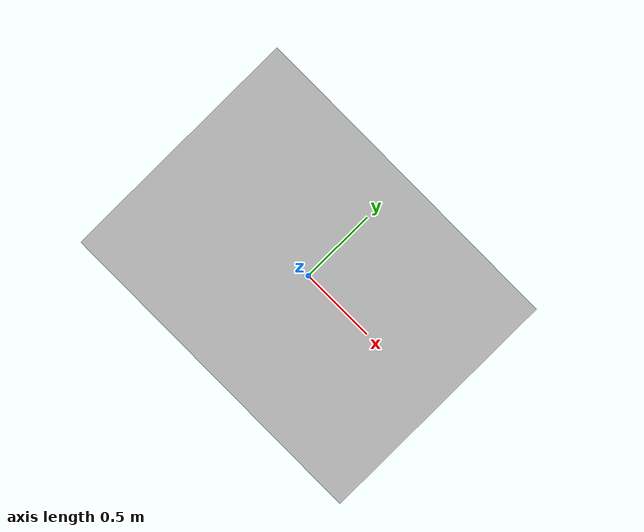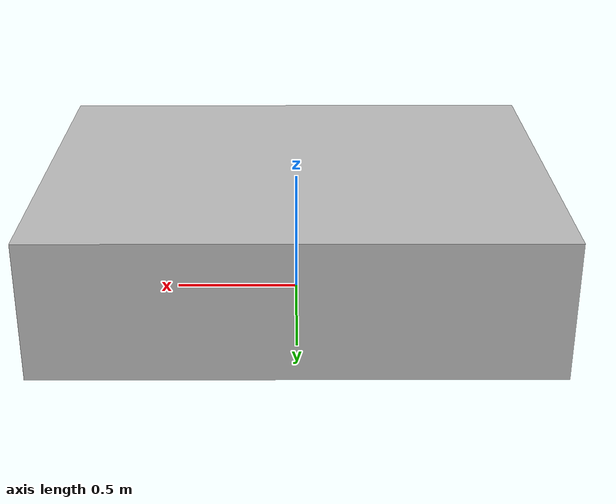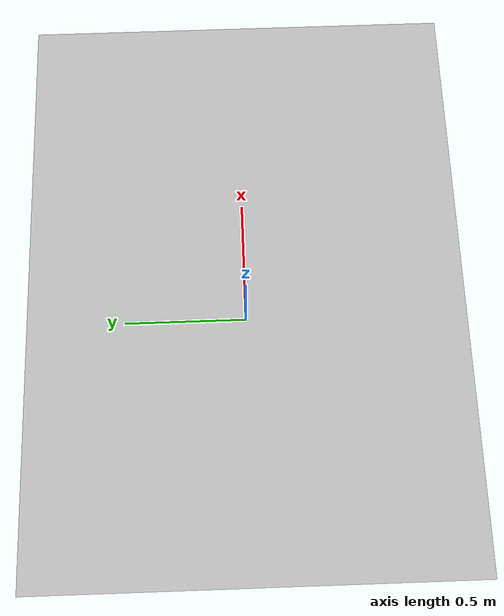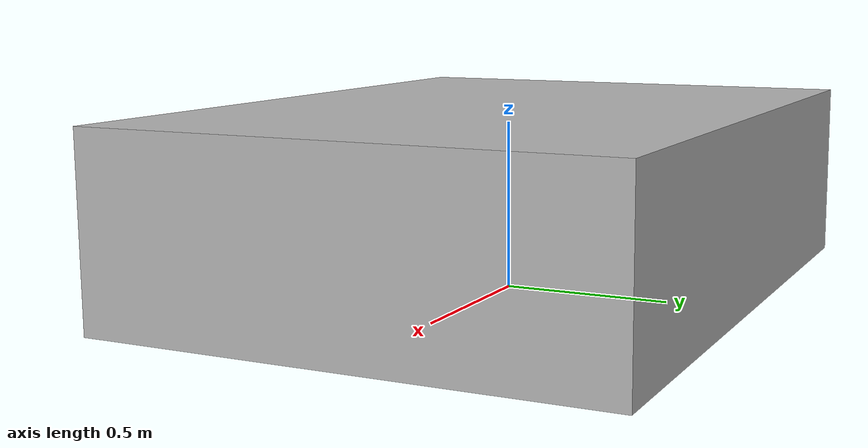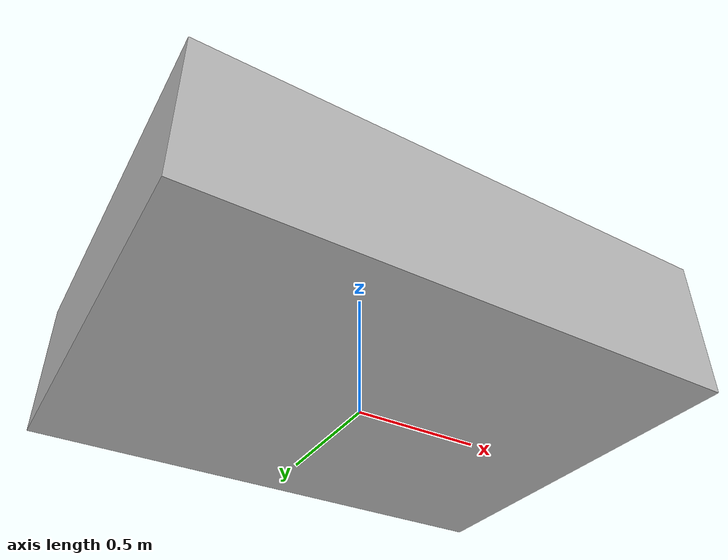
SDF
<?xml version="1.0"?>
<sdf version="1.6">
  <model name="rwc2018/bed">
    <link name="1_link">
      <collision name="1_col">
        <geometry>
          <box>
            <size>2.0 1.5 0.55</size>
          </box>
        </geometry>
      </collision>
      <visual name="1_vis">
        <geometry>
          <box>
            <size>2.0 1.5 0.55</size>
          </box>
        </geometry>
      </visual>
      <pose>0 0 0.275 0 0 0</pose>
    </link>
    <link name="on_top_of">
      <virtual_volume name="on_top_of_vv">
        <geometry>
          <box>
            <size>1.98 1.44 0.25</size>
          </box>
        </geometry>
        <pose>0.0 0.0 0.695 0 0 0</pose>
      </virtual_volume>
    </link>
    <link name="in_front_of">
      <virtual_volume name="in_front_of_vv">
        <geometry>
          <box>
            <size>1.2 1.8 0.01</size>
          </box>
        </geometry>
        <pose>1.0 -0.5 0.005 0 0 0</pose>
      </virtual_volume>
    </link>
    <static>true</static>
  </model>
</sdf>
